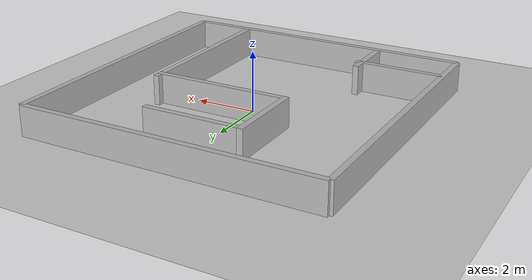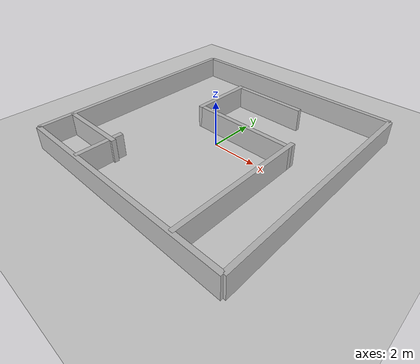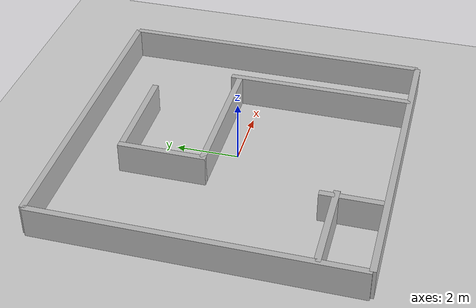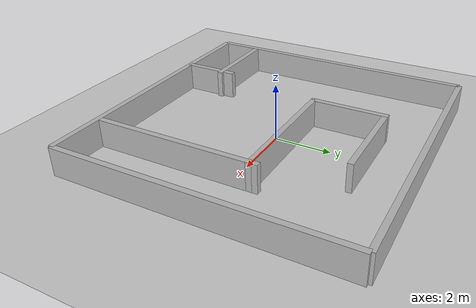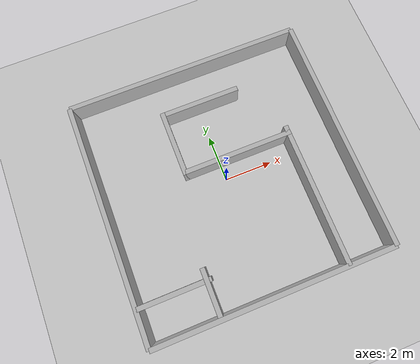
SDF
?xml version="1.0"?>
<sdf version="1.8">

<world name="task14_world">

  <!-- Sun -->
  <light name="sun" type="directional">
    <cast_shadows>true</cast_shadows>
    <pose>0 0 10 0 0 0</pose>
    <diffuse>1 1 1 1</diffuse>
    <specular>0.2 0.2 0.2 1</specular>
    <direction>-0.5 0.5 -1</direction>
  </light>

  <!-- Ground -->
  <model name="ground">
    <static>true</static>

    <link name="link">

      <collision name="collision">
        <geometry>
          <plane>
            <normal>0 0 1</normal>
            <size>20 20</size>
          </plane>
        </geometry>
      </collision>
      <visual name="visual">
        <geometry>
          <plane>
            <normal>0 0 1</normal>
            <size>20 20</size>
          </plane>
        </geometry>
      </visual>

    </link>

  </model>

  <!-- OUTER WALLS -->

  <!-- Top -->
  <model name="wall_top">
    <static>true</static>
    <pose>0 5 0.5 0 0 0</pose>

    <link name="link">

      <collision name="collision">
        <geometry>
          <box>
            <size>10 0.2 1</size>
          </box>
        </geometry>
      </collision>

      <visual name="visual">
        <geometry>
          <box>
            <size>10 0.2 1</size>
          </box>
        </geometry>
      </visual>

    </link>

  </model>

  <!-- Bottom -->
  <model name="wall_bottom">
    <static>true</static>
    <pose>0 -5 0.5 0 0 0</pose>

    <link name="link">
      <collision name="collision">
        <geometry>
          <box>
            <size>10 0.2 1</size>
          </box>
        </geometry>
      </collision>

      <visual name="visual">
        <geometry>
          <box>
            <size>10 0.2 1</size>
          </box>
        </geometry>
      </visual>

    </link>

  </model>

  <!-- Left -->
  <model name="wall_left">
    <static>true</static>
    <pose>-5 0 0.5 0 0 1.5708</pose>

    <link name="link">

      <collision name="collision">
        <geometry>
          <box>
            <size>10 0.2 1</size>
          </box>
        </geometry>
      </collision>

      <visual name="visual">
        <geometry>
          <box>
            <size>10 0.2 1</size>
          </box>
        </geometry>
      </visual>

    </link>

  </model>

  <!-- Right -->
  <model name="wall_right">
    <static>true</static>
    <pose>5 0 0.5 0 0 1.5708</pose>

    <link name="link">

      <collision name="collision">
        <geometry>
          <box>
            <size>10 0.2 1</size>
          </box>
        </geometry>
      </collision>

      <visual name="visual">
        <geometry>
          <box>
            <size>10 0.2 1</size>
          </box>
        </geometry>
      </visual>

    </link>

  </model>

  <!--INNER WALLS -->

  <!-- C Left -->
  <model name="c_left">
    <static>true</static>
    <pose>-1.5 2 0.5 0 0 1.5708</pose>

    <link name="link">
      <collision name="collision">
        <geometry>
          <box>
            <size>2.8 0.2 1</size>
          </box>
        </geometry>
      </collision>

      <visual name="visual">
        <geometry>
          <box>
            <size>2.8 0.2 1</size>
          </box>
        </geometry>
      </visual>
    </link>
  </model>

  <!-- C Top -->
  <model name="c_top">
    <static>true</static>
    <pose>0.2 3.3 0.5 0 0 0</pose>

    <link name="link">
      <collision name="collision">
        <geometry>
          <box>
            <size>3.2 0.2 1</size>
          </box>
        </geometry>
      </collision>

      <visual name="visual">
        <geometry>
          <box>
            <size>3.2 0.2 1</size>
          </box>
        </geometry>
      </visual>
    </link>
  </model>

  <!-- C Bottom -->
  <model name="c_bottom">
    <static>true</static>
    <pose>0.8 0.7 0.5 0 0 0</pose>

    <link name="link">
      <collision name="collision">
        <geometry>
          <box>
            <size>4.6 0.2 1</size>
          </box>
        </geometry>
      </collision>

      <visual name="visual">
        <geometry>
          <box>
            <size>4.6 0.2 1</size>
          </box>
        </geometry>
      </visual>
    </link>
  </model>

  <!-- Right Vertical -->
  <model name="right_vertical">
    <static>true</static>
    <pose>3 -2 0.5 0 0 1.5708</pose>

    <link name="link">
      <collision name="collision">
        <geometry>
          <box>
            <size>6 0.2 1</size>
          </box>
        </geometry>
      </collision>

      <visual name="visual">
        <geometry>
          <box>
            <size>6 0.2 1</size>
          </box>
        </geometry>
      </visual>
    </link>
  </model>

 <!-- Bottom Left -->
  <model name="bottom_corridor">
    <static>true</static>
    <pose>-3.5 -3.5 0.5 0 0 0</pose>

    <link name="link">
      <collision name="collision">
        <geometry>
          <box>
            <size>3 0.2 1</size>
          </box>
        </geometry>
      </collision>

      <visual name="visual">
        <geometry>
          <box>
            <size>3 0.2 1</size>
          </box>
        </geometry>
      </visual>
    </link>
  </model>

  <!-- Bottom Left Vertical -->
  <model name="bottom_vertical">
    <static>true</static>
    <pose>-2.2 -4 0.5 0 0 1.5708</pose>

    <link name="link">
      <collision name="collision">
        <geometry>
          <box>
            <size>2 0.2 1</size>
          </box>
        </geometry>
      </collision>

      <visual name="visual">
        <geometry>
          <box>
            <size>2 0.2 1</size>
          </box>
        </geometry>
      </visual>
    </link>
  </model>

</world>
</sdf>
